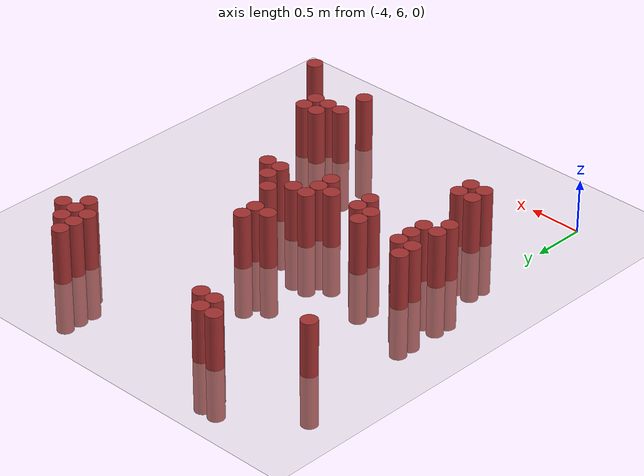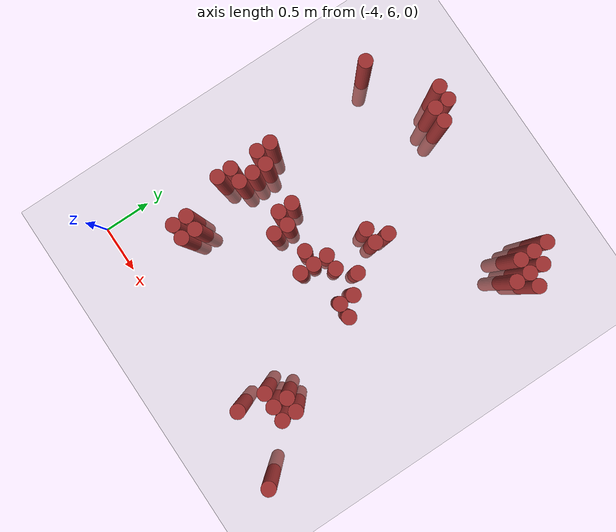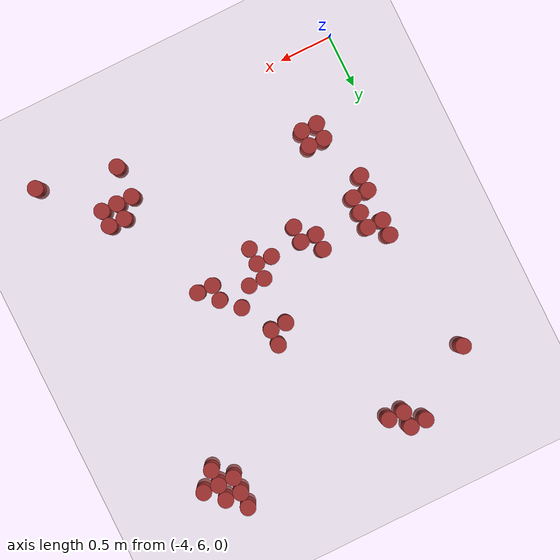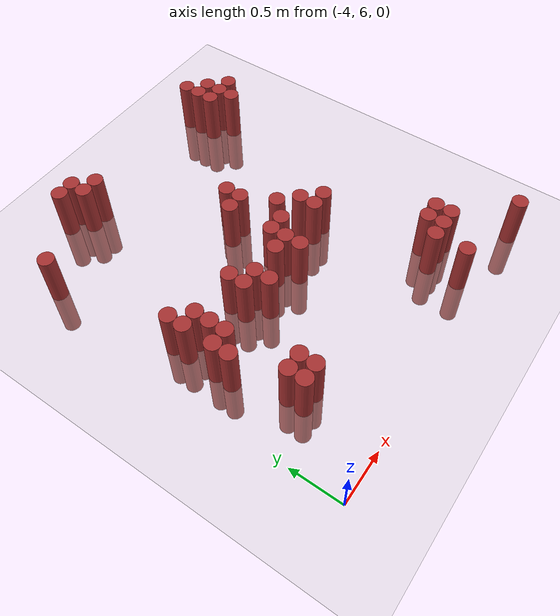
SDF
<sdf version="1.6">
 <world name="default">
  <model name="ground_plane">
   <static>1</static>
   <link name="link">
    <collision name="collision">
     <geometry><plane><normal>0 0 1</normal><size>100 100</size></plane></geometry>
     <surface><friction><ode><mu>100</mu><mu2>50</mu2></ode></friction></surface>
    </collision>
    <visual name="visual">
     <cast_shadows>0</cast_shadows>
     <geometry><plane><normal>0 0 1</normal><size>100 100</size></plane></geometry>
     <material>
      <script><uri>file://media/materials/scripts/gazebo.material</uri><name>Gazebo/Grey</name></script>
     </material>
    </visual>
   </link>
  </model>
  <model name="unit_cylinder_161">
   <static>1</static>
   <pose>-3.825000 9.075000 0.000000 0.000000 0.000000 0.000000</pose>
   <link name="link">
    <inertial>
     <mass>1</mass>
     <inertia><ixx>0.145833</ixx><ixy>0</ixy><ixz>0</ixz><iyy>0.145833</iyy><iyz>0</iyz><izz>0.125</izz></inertia>
    </inertial>
    <collision name="collision">
     <geometry><cylinder><radius>0.075000</radius><length>1</length></cylinder></geometry>
    </collision>
    <visual name="visual">
     <geometry><cylinder><radius>0.075000</radius><length>1</length></cylinder></geometry>
     <material>
      <ambient>0.648000 0.192000 0.192000 1</ambient>
      <diffuse>0.648000 0.192000 0.192000 1</diffuse>
     </material>
     <material>
      <script><name>Gazebo/Grey</name><uri>file://media/materials/scripts/gazebo.material</uri></script>
     </material>
    </visual>
   </link>
  </model>
  <model name="unit_cylinder_162">
   <static>1</static>
   <pose>-3.675000 7.275000 0.000000 0.000000 0.000000 0.000000</pose>
   <link name="link">
    <inertial>
     <mass>1</mass>
     <inertia><ixx>0.145833</ixx><ixy>0</ixy><ixz>0</ixz><iyy>0.145833</iyy><iyz>0</iyz><izz>0.125</izz></inertia>
    </inertial>
    <collision name="collision">
     <geometry><cylinder><radius>0.075000</radius><length>1</length></cylinder></geometry>
    </collision>
    <visual name="visual">
     <geometry><cylinder><radius>0.075000</radius><length>1</length></cylinder></geometry>
     <material>
      <ambient>0.648000 0.192000 0.192000 1</ambient>
      <diffuse>0.648000 0.192000 0.192000 1</diffuse>
     </material>
     <material>
      <script><name>Gazebo/Grey</name><uri>file://media/materials/scripts/gazebo.material</uri></script>
     </material>
    </visual>
   </link>
  </model>
  <model name="unit_cylinder_163">
   <static>1</static>
   <pose>-3.675000 7.425000 0.000000 0.000000 0.000000 0.000000</pose>
   <link name="link">
    <inertial>
     <mass>1</mass>
     <inertia><ixx>0.145833</ixx><ixy>0</ixy><ixz>0</ixz><iyy>0.145833</iyy><iyz>0</iyz><izz>0.125</izz></inertia>
    </inertial>
    <collision name="collision">
     <geometry><cylinder><radius>0.075000</radius><length>1</length></cylinder></geometry>
    </collision>
    <visual name="visual">
     <geometry><cylinder><radius>0.075000</radius><length>1</length></cylinder></geometry>
     <material>
      <ambient>0.648000 0.192000 0.192000 1</ambient>
      <diffuse>0.648000 0.192000 0.192000 1</diffuse>
     </material>
     <material>
      <script><name>Gazebo/Grey</name><uri>file://media/materials/scripts/gazebo.material</uri></script>
     </material>
    </visual>
   </link>
  </model>
  <model name="unit_cylinder_164">
   <static>1</static>
   <pose>-3.675000 7.725000 0.000000 0.000000 0.000000 0.000000</pose>
   <link name="link">
    <inertial>
     <mass>1</mass>
     <inertia><ixx>0.145833</ixx><ixy>0</ixy><ixz>0</ixz><iyy>0.145833</iyy><iyz>0</iyz><izz>0.125</izz></inertia>
    </inertial>
    <collision name="collision">
     <geometry><cylinder><radius>0.075000</radius><length>1</length></cylinder></geometry>
    </collision>
    <visual name="visual">
     <geometry><cylinder><radius>0.075000</radius><length>1</length></cylinder></geometry>
     <material>
      <ambient>0.648000 0.192000 0.192000 1</ambient>
      <diffuse>0.648000 0.192000 0.192000 1</diffuse>
     </material>
     <material>
      <script><name>Gazebo/Grey</name><uri>file://media/materials/scripts/gazebo.material</uri></script>
     </material>
    </visual>
   </link>
  </model>
  <model name="unit_cylinder_165">
   <static>1</static>
   <pose>-3.675000 7.875000 0.000000 0.000000 0.000000 0.000000</pose>
   <link name="link">
    <inertial>
     <mass>1</mass>
     <inertia><ixx>0.145833</ixx><ixy>0</ixy><ixz>0</ixz><iyy>0.145833</iyy><iyz>0</iyz><izz>0.125</izz></inertia>
    </inertial>
    <collision name="collision">
     <geometry><cylinder><radius>0.075000</radius><length>1</length></cylinder></geometry>
    </collision>
    <visual name="visual">
     <geometry><cylinder><radius>0.075000</radius><length>1</length></cylinder></geometry>
     <material>
      <ambient>0.648000 0.192000 0.192000 1</ambient>
      <diffuse>0.648000 0.192000 0.192000 1</diffuse>
     </material>
     <material>
      <script><name>Gazebo/Grey</name><uri>file://media/materials/scripts/gazebo.material</uri></script>
     </material>
    </visual>
   </link>
  </model>
  <model name="unit_cylinder_166">
   <static>1</static>
   <pose>-3.525000 6.675000 0.000000 0.000000 0.000000 0.000000</pose>
   <link name="link">
    <inertial>
     <mass>1</mass>
     <inertia><ixx>0.145833</ixx><ixy>0</ixy><ixz>0</ixz><iyy>0.145833</iyy><iyz>0</iyz><izz>0.125</izz></inertia>
    </inertial>
    <collision name="collision">
     <geometry><cylinder><radius>0.075000</radius><length>1</length></cylinder></geometry>
    </collision>
    <visual name="visual">
     <geometry><cylinder><radius>0.075000</radius><length>1</length></cylinder></geometry>
     <material>
      <ambient>0.648000 0.192000 0.192000 1</ambient>
      <diffuse>0.648000 0.192000 0.192000 1</diffuse>
     </material>
     <material>
      <script><name>Gazebo/Grey</name><uri>file://media/materials/scripts/gazebo.material</uri></script>
     </material>
    </visual>
   </link>
  </model>
  <model name="unit_cylinder_167">
   <static>1</static>
   <pose>-3.525000 6.825000 0.000000 0.000000 0.000000 0.000000</pose>
   <link name="link">
    <inertial>
     <mass>1</mass>
     <inertia><ixx>0.145833</ixx><ixy>0</ixy><ixz>0</ixz><iyy>0.145833</iyy><iyz>0</iyz><izz>0.125</izz></inertia>
    </inertial>
    <collision name="collision">
     <geometry><cylinder><radius>0.075000</radius><length>1</length></cylinder></geometry>
    </collision>
    <visual name="visual">
     <geometry><cylinder><radius>0.075000</radius><length>1</length></cylinder></geometry>
     <material>
      <ambient>0.648000 0.192000 0.192000 1</ambient>
      <diffuse>0.648000 0.192000 0.192000 1</diffuse>
     </material>
     <material>
      <script><name>Gazebo/Grey</name><uri>file://media/materials/scripts/gazebo.material</uri></script>
     </material>
    </visual>
   </link>
  </model>
  <model name="unit_cylinder_168">
   <static>1</static>
   <pose>-3.525000 7.425000 0.000000 0.000000 0.000000 0.000000</pose>
   <link name="link">
    <inertial>
     <mass>1</mass>
     <inertia><ixx>0.145833</ixx><ixy>0</ixy><ixz>0</ixz><iyy>0.145833</iyy><iyz>0</iyz><izz>0.125</izz></inertia>
    </inertial>
    <collision name="collision">
     <geometry><cylinder><radius>0.075000</radius><length>1</length></cylinder></geometry>
    </collision>
    <visual name="visual">
     <geometry><cylinder><radius>0.075000</radius><length>1</length></cylinder></geometry>
     <material>
      <ambient>0.648000 0.192000 0.192000 1</ambient>
      <diffuse>0.648000 0.192000 0.192000 1</diffuse>
     </material>
     <material>
      <script><name>Gazebo/Grey</name><uri>file://media/materials/scripts/gazebo.material</uri></script>
     </material>
    </visual>
   </link>
  </model>
  <model name="unit_cylinder_169">
   <static>1</static>
   <pose>-3.525000 7.575000 0.000000 0.000000 0.000000 0.000000</pose>
   <link name="link">
    <inertial>
     <mass>1</mass>
     <inertia><ixx>0.145833</ixx><ixy>0</ixy><ixz>0</ixz><iyy>0.145833</iyy><iyz>0</iyz><izz>0.125</izz></inertia>
    </inertial>
    <collision name="collision">
     <geometry><cylinder><radius>0.075000</radius><length>1</length></cylinder></geometry>
    </collision>
    <visual name="visual">
     <geometry><cylinder><radius>0.075000</radius><length>1</length></cylinder></geometry>
     <material>
      <ambient>0.648000 0.192000 0.192000 1</ambient>
      <diffuse>0.648000 0.192000 0.192000 1</diffuse>
     </material>
     <material>
      <script><name>Gazebo/Grey</name><uri>file://media/materials/scripts/gazebo.material</uri></script>
     </material>
    </visual>
   </link>
  </model>
  <model name="unit_cylinder_170">
   <static>1</static>
   <pose>-3.525000 7.725000 0.000000 0.000000 0.000000 0.000000</pose>
   <link name="link">
    <inertial>
     <mass>1</mass>
     <inertia><ixx>0.145833</ixx><ixy>0</ixy><ixz>0</ixz><iyy>0.145833</iyy><iyz>0</iyz><izz>0.125</izz></inertia>
    </inertial>
    <collision name="collision">
     <geometry><cylinder><radius>0.075000</radius><length>1</length></cylinder></geometry>
    </collision>
    <visual name="visual">
     <geometry><cylinder><radius>0.075000</radius><length>1</length></cylinder></geometry>
     <material>
      <ambient>0.648000 0.192000 0.192000 1</ambient>
      <diffuse>0.648000 0.192000 0.192000 1</diffuse>
     </material>
     <material>
      <script><name>Gazebo/Grey</name><uri>file://media/materials/scripts/gazebo.material</uri></script>
     </material>
    </visual>
   </link>
  </model>
  <model name="unit_cylinder_171">
   <static>1</static>
   <pose>-3.375000 6.675000 0.000000 0.000000 0.000000 0.000000</pose>
   <link name="link">
    <inertial>
     <mass>1</mass>
     <inertia><ixx>0.145833</ixx><ixy>0</ixy><ixz>0</ixz><iyy>0.145833</iyy><iyz>0</iyz><izz>0.125</izz></inertia>
    </inertial>
    <collision name="collision">
     <geometry><cylinder><radius>0.075000</radius><length>1</length></cylinder></geometry>
    </collision>
    <visual name="visual">
     <geometry><cylinder><radius>0.075000</radius><length>1</length></cylinder></geometry>
     <material>
      <ambient>0.648000 0.192000 0.192000 1</ambient>
      <diffuse>0.648000 0.192000 0.192000 1</diffuse>
     </material>
     <material>
      <script><name>Gazebo/Grey</name><uri>file://media/materials/scripts/gazebo.material</uri></script>
     </material>
    </visual>
   </link>
  </model>
  <model name="unit_cylinder_172">
   <static>1</static>
   <pose>-3.375000 6.825000 0.000000 0.000000 0.000000 0.000000</pose>
   <link name="link">
    <inertial>
     <mass>1</mass>
     <inertia><ixx>0.145833</ixx><ixy>0</ixy><ixz>0</ixz><iyy>0.145833</iyy><iyz>0</iyz><izz>0.125</izz></inertia>
    </inertial>
    <collision name="collision">
     <geometry><cylinder><radius>0.075000</radius><length>1</length></cylinder></geometry>
    </collision>
    <visual name="visual">
     <geometry><cylinder><radius>0.075000</radius><length>1</length></cylinder></geometry>
     <material>
      <ambient>0.648000 0.192000 0.192000 1</ambient>
      <diffuse>0.648000 0.192000 0.192000 1</diffuse>
     </material>
     <material>
      <script><name>Gazebo/Grey</name><uri>file://media/materials/scripts/gazebo.material</uri></script>
     </material>
    </visual>
   </link>
  </model>
  <model name="unit_cylinder_173">
   <static>1</static>
   <pose>-3.225000 9.525000 0.000000 0.000000 0.000000 0.000000</pose>
   <link name="link">
    <inertial>
     <mass>1</mass>
     <inertia><ixx>0.145833</ixx><ixy>0</ixy><ixz>0</ixz><iyy>0.145833</iyy><iyz>0</iyz><izz>0.125</izz></inertia>
    </inertial>
    <collision name="collision">
     <geometry><cylinder><radius>0.075000</radius><length>1</length></cylinder></geometry>
    </collision>
    <visual name="visual">
     <geometry><cylinder><radius>0.075000</radius><length>1</length></cylinder></geometry>
     <material>
      <ambient>0.648000 0.192000 0.192000 1</ambient>
      <diffuse>0.648000 0.192000 0.192000 1</diffuse>
     </material>
     <material>
      <script><name>Gazebo/Grey</name><uri>file://media/materials/scripts/gazebo.material</uri></script>
     </material>
    </visual>
   </link>
  </model>
  <model name="unit_cylinder_174">
   <static>1</static>
   <pose>-3.075000 7.575000 0.000000 0.000000 0.000000 0.000000</pose>
   <link name="link">
    <inertial>
     <mass>1</mass>
     <inertia><ixx>0.145833</ixx><ixy>0</ixy><ixz>0</ixz><iyy>0.145833</iyy><iyz>0</iyz><izz>0.125</izz></inertia>
    </inertial>
    <collision name="collision">
     <geometry><cylinder><radius>0.075000</radius><length>1</length></cylinder></geometry>
    </collision>
    <visual name="visual">
     <geometry><cylinder><radius>0.075000</radius><length>1</length></cylinder></geometry>
     <material>
      <ambient>0.648000 0.192000 0.192000 1</ambient>
      <diffuse>0.648000 0.192000 0.192000 1</diffuse>
     </material>
     <material>
      <script><name>Gazebo/Grey</name><uri>file://media/materials/scripts/gazebo.material</uri></script>
     </material>
    </visual>
   </link>
  </model>
  <model name="unit_cylinder_175">
   <static>1</static>
   <pose>-3.075000 7.725000 0.000000 0.000000 0.000000 0.000000</pose>
   <link name="link">
    <inertial>
     <mass>1</mass>
     <inertia><ixx>0.145833</ixx><ixy>0</ixy><ixz>0</ixz><iyy>0.145833</iyy><iyz>0</iyz><izz>0.125</izz></inertia>
    </inertial>
    <collision name="collision">
     <geometry><cylinder><radius>0.075000</radius><length>1</length></cylinder></geometry>
    </collision>
    <visual name="visual">
     <geometry><cylinder><radius>0.075000</radius><length>1</length></cylinder></geometry>
     <material>
      <ambient>0.648000 0.192000 0.192000 1</ambient>
      <diffuse>0.648000 0.192000 0.192000 1</diffuse>
     </material>
     <material>
      <script><name>Gazebo/Grey</name><uri>file://media/materials/scripts/gazebo.material</uri></script>
     </material>
    </visual>
   </link>
  </model>
  <model name="unit_cylinder_176">
   <static>1</static>
   <pose>-3.075000 9.375000 0.000000 0.000000 0.000000 0.000000</pose>
   <link name="link">
    <inertial>
     <mass>1</mass>
     <inertia><ixx>0.145833</ixx><ixy>0</ixy><ixz>0</ixz><iyy>0.145833</iyy><iyz>0</iyz><izz>0.125</izz></inertia>
    </inertial>
    <collision name="collision">
     <geometry><cylinder><radius>0.075000</radius><length>1</length></cylinder></geometry>
    </collision>
    <visual name="visual">
     <geometry><cylinder><radius>0.075000</radius><length>1</length></cylinder></geometry>
     <material>
      <ambient>0.648000 0.192000 0.192000 1</ambient>
      <diffuse>0.648000 0.192000 0.192000 1</diffuse>
     </material>
     <material>
      <script><name>Gazebo/Grey</name><uri>file://media/materials/scripts/gazebo.material</uri></script>
     </material>
    </visual>
   </link>
  </model>
  <model name="unit_cylinder_177">
   <static>1</static>
   <pose>-3.075000 9.525000 0.000000 0.000000 0.000000 0.000000</pose>
   <link name="link">
    <inertial>
     <mass>1</mass>
     <inertia><ixx>0.145833</ixx><ixy>0</ixy><ixz>0</ixz><iyy>0.145833</iyy><iyz>0</iyz><izz>0.125</izz></inertia>
    </inertial>
    <collision name="collision">
     <geometry><cylinder><radius>0.075000</radius><length>1</length></cylinder></geometry>
    </collision>
    <visual name="visual">
     <geometry><cylinder><radius>0.075000</radius><length>1</length></cylinder></geometry>
     <material>
      <ambient>0.648000 0.192000 0.192000 1</ambient>
      <diffuse>0.648000 0.192000 0.192000 1</diffuse>
     </material>
     <material>
      <script><name>Gazebo/Grey</name><uri>file://media/materials/scripts/gazebo.material</uri></script>
     </material>
    </visual>
   </link>
  </model>
  <model name="unit_cylinder_178">
   <static>1</static>
   <pose>-2.925000 7.425000 0.000000 0.000000 0.000000 0.000000</pose>
   <link name="link">
    <inertial>
     <mass>1</mass>
     <inertia><ixx>0.145833</ixx><ixy>0</ixy><ixz>0</ixz><iyy>0.145833</iyy><iyz>0</iyz><izz>0.125</izz></inertia>
    </inertial>
    <collision name="collision">
     <geometry><cylinder><radius>0.075000</radius><length>1</length></cylinder></geometry>
    </collision>
    <visual name="visual">
     <geometry><cylinder><radius>0.075000</radius><length>1</length></cylinder></geometry>
     <material>
      <ambient>0.648000 0.192000 0.192000 1</ambient>
      <diffuse>0.648000 0.192000 0.192000 1</diffuse>
     </material>
     <material>
      <script><name>Gazebo/Grey</name><uri>file://media/materials/scripts/gazebo.material</uri></script>
     </material>
    </visual>
   </link>
  </model>
  <model name="unit_cylinder_179">
   <static>1</static>
   <pose>-2.925000 7.575000 0.000000 0.000000 0.000000 0.000000</pose>
   <link name="link">
    <inertial>
     <mass>1</mass>
     <inertia><ixx>0.145833</ixx><ixy>0</ixy><ixz>0</ixz><iyy>0.145833</iyy><iyz>0</iyz><izz>0.125</izz></inertia>
    </inertial>
    <collision name="collision">
     <geometry><cylinder><radius>0.075000</radius><length>1</length></cylinder></geometry>
    </collision>
    <visual name="visual">
     <geometry><cylinder><radius>0.075000</radius><length>1</length></cylinder></geometry>
     <material>
      <ambient>0.648000 0.192000 0.192000 1</ambient>
      <diffuse>0.648000 0.192000 0.192000 1</diffuse>
     </material>
     <material>
      <script><name>Gazebo/Grey</name><uri>file://media/materials/scripts/gazebo.material</uri></script>
     </material>
    </visual>
   </link>
  </model>
  <model name="unit_cylinder_180">
   <static>1</static>
   <pose>-2.925000 9.375000 0.000000 0.000000 0.000000 0.000000</pose>
   <link name="link">
    <inertial>
     <mass>1</mass>
     <inertia><ixx>0.145833</ixx><ixy>0</ixy><ixz>0</ixz><iyy>0.145833</iyy><iyz>0</iyz><izz>0.125</izz></inertia>
    </inertial>
    <collision name="collision">
     <geometry><cylinder><radius>0.075000</radius><length>1</length></cylinder></geometry>
    </collision>
    <visual name="visual">
     <geometry><cylinder><radius>0.075000</radius><length>1</length></cylinder></geometry>
     <material>
      <ambient>0.648000 0.192000 0.192000 1</ambient>
      <diffuse>0.648000 0.192000 0.192000 1</diffuse>
     </material>
     <material>
      <script><name>Gazebo/Grey</name><uri>file://media/materials/scripts/gazebo.material</uri></script>
     </material>
    </visual>
   </link>
  </model>
  <model name="unit_cylinder_184">
   <static>1</static>
   <pose>-2.625000 7.575000 0.000000 0.000000 0.000000 0.000000</pose>
   <link name="link">
    <inertial>
     <mass>1</mass>
     <inertia><ixx>0.145833</ixx><ixy>0</ixy><ixz>0</ixz><iyy>0.145833</iyy><iyz>0</iyz><izz>0.125</izz></inertia>
    </inertial>
    <collision name="collision">
     <geometry><cylinder><radius>0.075000</radius><length>1</length></cylinder></geometry>
    </collision>
    <visual name="visual">
     <geometry><cylinder><radius>0.075000</radius><length>1</length></cylinder></geometry>
     <material>
      <ambient>0.648000 0.192000 0.192000 1</ambient>
      <diffuse>0.648000 0.192000 0.192000 1</diffuse>
     </material>
     <material>
      <script><name>Gazebo/Grey</name><uri>file://media/materials/scripts/gazebo.material</uri></script>
     </material>
    </visual>
   </link>
  </model>
  <model name="unit_cylinder_186">
   <static>1</static>
   <pose>-2.475000 7.425000 0.000000 0.000000 0.000000 0.000000</pose>
   <link name="link">
    <inertial>
     <mass>1</mass>
     <inertia><ixx>0.145833</ixx><ixy>0</ixy><ixz>0</ixz><iyy>0.145833</iyy><iyz>0</iyz><izz>0.125</izz></inertia>
    </inertial>
    <collision name="collision">
     <geometry><cylinder><radius>0.075000</radius><length>1</length></cylinder></geometry>
    </collision>
    <visual name="visual">
     <geometry><cylinder><radius>0.075000</radius><length>1</length></cylinder></geometry>
     <material>
      <ambient>0.648000 0.192000 0.192000 1</ambient>
      <diffuse>0.648000 0.192000 0.192000 1</diffuse>
     </material>
     <material>
      <script><name>Gazebo/Grey</name><uri>file://media/materials/scripts/gazebo.material</uri></script>
     </material>
    </visual>
   </link>
  </model>
  <model name="unit_cylinder_187">
   <static>1</static>
   <pose>-2.475000 7.575000 0.000000 0.000000 0.000000 0.000000</pose>
   <link name="link">
    <inertial>
     <mass>1</mass>
     <inertia><ixx>0.145833</ixx><ixy>0</ixy><ixz>0</ixz><iyy>0.145833</iyy><iyz>0</iyz><izz>0.125</izz></inertia>
    </inertial>
    <collision name="collision">
     <geometry><cylinder><radius>0.075000</radius><length>1</length></cylinder></geometry>
    </collision>
    <visual name="visual">
     <geometry><cylinder><radius>0.075000</radius><length>1</length></cylinder></geometry>
     <material>
      <ambient>0.648000 0.192000 0.192000 1</ambient>
      <diffuse>0.648000 0.192000 0.192000 1</diffuse>
     </material>
     <material>
      <script><name>Gazebo/Grey</name><uri>file://media/materials/scripts/gazebo.material</uri></script>
     </material>
    </visual>
   </link>
  </model>
  <model name="unit_cylinder_188">
   <static>1</static>
   <pose>-2.475000 7.725000 0.000000 0.000000 0.000000 0.000000</pose>
   <link name="link">
    <inertial>
     <mass>1</mass>
     <inertia><ixx>0.145833</ixx><ixy>0</ixy><ixz>0</ixz><iyy>0.145833</iyy><iyz>0</iyz><izz>0.125</izz></inertia>
    </inertial>
    <collision name="collision">
     <geometry><cylinder><radius>0.075000</radius><length>1</length></cylinder></geometry>
    </collision>
    <visual name="visual">
     <geometry><cylinder><radius>0.075000</radius><length>1</length></cylinder></geometry>
     <material>
      <ambient>0.648000 0.192000 0.192000 1</ambient>
      <diffuse>0.648000 0.192000 0.192000 1</diffuse>
     </material>
     <material>
      <script><name>Gazebo/Grey</name><uri>file://media/materials/scripts/gazebo.material</uri></script>
     </material>
    </visual>
   </link>
  </model>
  <model name="unit_cylinder_189">
   <static>1</static>
   <pose>-2.475000 8.175000 0.000000 0.000000 0.000000 0.000000</pose>
   <link name="link">
    <inertial>
     <mass>1</mass>
     <inertia><ixx>0.145833</ixx><ixy>0</ixy><ixz>0</ixz><iyy>0.145833</iyy><iyz>0</iyz><izz>0.125</izz></inertia>
    </inertial>
    <collision name="collision">
     <geometry><cylinder><radius>0.075000</radius><length>1</length></cylinder></geometry>
    </collision>
    <visual name="visual">
     <geometry><cylinder><radius>0.075000</radius><length>1</length></cylinder></geometry>
     <material>
      <ambient>0.648000 0.192000 0.192000 1</ambient>
      <diffuse>0.648000 0.192000 0.192000 1</diffuse>
     </material>
     <material>
      <script><name>Gazebo/Grey</name><uri>file://media/materials/scripts/gazebo.material</uri></script>
     </material>
    </visual>
   </link>
  </model>
  <model name="unit_cylinder_190">
   <static>1</static>
   <pose>-2.325000 7.725000 0.000000 0.000000 0.000000 0.000000</pose>
   <link name="link">
    <inertial>
     <mass>1</mass>
     <inertia><ixx>0.145833</ixx><ixy>0</ixy><ixz>0</ixz><iyy>0.145833</iyy><iyz>0</iyz><izz>0.125</izz></inertia>
    </inertial>
    <collision name="collision">
     <geometry><cylinder><radius>0.075000</radius><length>1</length></cylinder></geometry>
    </collision>
    <visual name="visual">
     <geometry><cylinder><radius>0.075000</radius><length>1</length></cylinder></geometry>
     <material>
      <ambient>0.648000 0.192000 0.192000 1</ambient>
      <diffuse>0.648000 0.192000 0.192000 1</diffuse>
     </material>
     <material>
      <script><name>Gazebo/Grey</name><uri>file://media/materials/scripts/gazebo.material</uri></script>
     </material>
    </visual>
   </link>
  </model>
  <model name="unit_cylinder_191">
   <static>1</static>
   <pose>-2.325000 8.175000 0.000000 0.000000 0.000000 0.000000</pose>
   <link name="link">
    <inertial>
     <mass>1</mass>
     <inertia><ixx>0.145833</ixx><ixy>0</ixy><ixz>0</ixz><iyy>0.145833</iyy><iyz>0</iyz><izz>0.125</izz></inertia>
    </inertial>
    <collision name="collision">
     <geometry><cylinder><radius>0.075000</radius><length>1</length></cylinder></geometry>
    </collision>
    <visual name="visual">
     <geometry><cylinder><radius>0.075000</radius><length>1</length></cylinder></geometry>
     <material>
      <ambient>0.648000 0.192000 0.192000 1</ambient>
      <diffuse>0.648000 0.192000 0.192000 1</diffuse>
     </material>
     <material>
      <script><name>Gazebo/Grey</name><uri>file://media/materials/scripts/gazebo.material</uri></script>
     </material>
    </visual>
   </link>
  </model>
  <model name="unit_cylinder_192">
   <static>1</static>
   <pose>-2.325000 8.325000 0.000000 0.000000 0.000000 0.000000</pose>
   <link name="link">
    <inertial>
     <mass>1</mass>
     <inertia><ixx>0.145833</ixx><ixy>0</ixy><ixz>0</ixz><iyy>0.145833</iyy><iyz>0</iyz><izz>0.125</izz></inertia>
    </inertial>
    <collision name="collision">
     <geometry><cylinder><radius>0.075000</radius><length>1</length></cylinder></geometry>
    </collision>
    <visual name="visual">
     <geometry><cylinder><radius>0.075000</radius><length>1</length></cylinder></geometry>
     <material>
      <ambient>0.648000 0.192000 0.192000 1</ambient>
      <diffuse>0.648000 0.192000 0.192000 1</diffuse>
     </material>
     <material>
      <script><name>Gazebo/Grey</name><uri>file://media/materials/scripts/gazebo.material</uri></script>
     </material>
    </visual>
   </link>
  </model>
  <model name="unit_cylinder_193">
   <static>1</static>
   <pose>-2.175000 7.875000 0.000000 0.000000 0.000000 0.000000</pose>
   <link name="link">
    <inertial>
     <mass>1</mass>
     <inertia><ixx>0.145833</ixx><ixy>0</ixy><ixz>0</ixz><iyy>0.145833</iyy><iyz>0</iyz><izz>0.125</izz></inertia>
    </inertial>
    <collision name="collision">
     <geometry><cylinder><radius>0.075000</radius><length>1</length></cylinder></geometry>
    </collision>
    <visual name="visual">
     <geometry><cylinder><radius>0.075000</radius><length>1</length></cylinder></geometry>
     <material>
      <ambient>0.648000 0.192000 0.192000 1</ambient>
      <diffuse>0.648000 0.192000 0.192000 1</diffuse>
     </material>
     <material>
      <script><name>Gazebo/Grey</name><uri>file://media/materials/scripts/gazebo.material</uri></script>
     </material>
    </visual>
   </link>
  </model>
  <model name="unit_cylinder_199">
   <static>1</static>
   <pose>-2.025000 7.575000 0.000000 0.000000 0.000000 0.000000</pose>
   <link name="link">
    <inertial>
     <mass>1</mass>
     <inertia><ixx>0.145833</ixx><ixy>0</ixy><ixz>0</ixz><iyy>0.145833</iyy><iyz>0</iyz><izz>0.125</izz></inertia>
    </inertial>
    <collision name="collision">
     <geometry><cylinder><radius>0.075000</radius><length>1</length></cylinder></geometry>
    </collision>
    <visual name="visual">
     <geometry><cylinder><radius>0.075000</radius><length>1</length></cylinder></geometry>
     <material>
      <ambient>0.648000 0.192000 0.192000 1</ambient>
      <diffuse>0.648000 0.192000 0.192000 1</diffuse>
     </material>
     <material>
      <script><name>Gazebo/Grey</name><uri>file://media/materials/scripts/gazebo.material</uri></script>
     </material>
    </visual>
   </link>
  </model>
  <model name="unit_cylinder_200">
   <static>1</static>
   <pose>-2.025000 7.725000 0.000000 0.000000 0.000000 0.000000</pose>
   <link name="link">
    <inertial>
     <mass>1</mass>
     <inertia><ixx>0.145833</ixx><ixy>0</ixy><ixz>0</ixz><iyy>0.145833</iyy><iyz>0</iyz><izz>0.125</izz></inertia>
    </inertial>
    <collision name="collision">
     <geometry><cylinder><radius>0.075000</radius><length>1</length></cylinder></geometry>
    </collision>
    <visual name="visual">
     <geometry><cylinder><radius>0.075000</radius><length>1</length></cylinder></geometry>
     <material>
      <ambient>0.648000 0.192000 0.192000 1</ambient>
      <diffuse>0.648000 0.192000 0.192000 1</diffuse>
     </material>
     <material>
      <script><name>Gazebo/Grey</name><uri>file://media/materials/scripts/gazebo.material</uri></script>
     </material>
    </visual>
   </link>
  </model>
  <model name="unit_cylinder_206">
   <static>1</static>
   <pose>-1.875000 7.575000 0.000000 0.000000 0.000000 0.000000</pose>
   <link name="link">
    <inertial>
     <mass>1</mass>
     <inertia><ixx>0.145833</ixx><ixy>0</ixy><ixz>0</ixz><iyy>0.145833</iyy><iyz>0</iyz><izz>0.125</izz></inertia>
    </inertial>
    <collision name="collision">
     <geometry><cylinder><radius>0.075000</radius><length>1</length></cylinder></geometry>
    </collision>
    <visual name="visual">
     <geometry><cylinder><radius>0.075000</radius><length>1</length></cylinder></geometry>
     <material>
      <ambient>0.648000 0.192000 0.192000 1</ambient>
      <diffuse>0.648000 0.192000 0.192000 1</diffuse>
     </material>
     <material>
      <script><name>Gazebo/Grey</name><uri>file://media/materials/scripts/gazebo.material</uri></script>
     </material>
    </visual>
   </link>
  </model>
  <model name="unit_cylinder_209">
   <static>1</static>
   <pose>-1.725000 6.225000 0.000000 0.000000 0.000000 0.000000</pose>
   <link name="link">
    <inertial>
     <mass>1</mass>
     <inertia><ixx>0.145833</ixx><ixy>0</ixy><ixz>0</ixz><iyy>0.145833</iyy><iyz>0</iyz><izz>0.125</izz></inertia>
    </inertial>
    <collision name="collision">
     <geometry><cylinder><radius>0.075000</radius><length>1</length></cylinder></geometry>
    </collision>
    <visual name="visual">
     <geometry><cylinder><radius>0.075000</radius><length>1</length></cylinder></geometry>
     <material>
      <ambient>0.648000 0.192000 0.192000 1</ambient>
      <diffuse>0.648000 0.192000 0.192000 1</diffuse>
     </material>
     <material>
      <script><name>Gazebo/Grey</name><uri>file://media/materials/scripts/gazebo.material</uri></script>
     </material>
    </visual>
   </link>
  </model>
  <model name="unit_cylinder_210">
   <static>1</static>
   <pose>-1.725000 6.525000 0.000000 0.000000 0.000000 0.000000</pose>
   <link name="link">
    <inertial>
     <mass>1</mass>
     <inertia><ixx>0.145833</ixx><ixy>0</ixy><ixz>0</ixz><iyy>0.145833</iyy><iyz>0</iyz><izz>0.125</izz></inertia>
    </inertial>
    <collision name="collision">
     <geometry><cylinder><radius>0.075000</radius><length>1</length></cylinder></geometry>
    </collision>
    <visual name="visual">
     <geometry><cylinder><radius>0.075000</radius><length>1</length></cylinder></geometry>
     <material>
      <ambient>0.648000 0.192000 0.192000 1</ambient>
      <diffuse>0.648000 0.192000 0.192000 1</diffuse>
     </material>
     <material>
      <script><name>Gazebo/Grey</name><uri>file://media/materials/scripts/gazebo.material</uri></script>
     </material>
    </visual>
   </link>
  </model>
  <model name="unit_cylinder_211">
   <static>1</static>
   <pose>-1.575000 6.525000 0.000000 0.000000 0.000000 0.000000</pose>
   <link name="link">
    <inertial>
     <mass>1</mass>
     <inertia><ixx>0.145833</ixx><ixy>0</ixy><ixz>0</ixz><iyy>0.145833</iyy><iyz>0</iyz><izz>0.125</izz></inertia>
    </inertial>
    <collision name="collision">
     <geometry><cylinder><radius>0.075000</radius><length>1</length></cylinder></geometry>
    </collision>
    <visual name="visual">
     <geometry><cylinder><radius>0.075000</radius><length>1</length></cylinder></geometry>
     <material>
      <ambient>0.648000 0.192000 0.192000 1</ambient>
      <diffuse>0.648000 0.192000 0.192000 1</diffuse>
     </material>
     <material>
      <script><name>Gazebo/Grey</name><uri>file://media/materials/scripts/gazebo.material</uri></script>
     </material>
    </visual>
   </link>
  </model>
  <model name="unit_cylinder_212">
   <static>1</static>
   <pose>-1.575000 6.675000 0.000000 0.000000 0.000000 0.000000</pose>
   <link name="link">
    <inertial>
     <mass>1</mass>
     <inertia><ixx>0.145833</ixx><ixy>0</ixy><ixz>0</ixz><iyy>0.145833</iyy><iyz>0</iyz><izz>0.125</izz></inertia>
    </inertial>
    <collision name="collision">
     <geometry><cylinder><radius>0.075000</radius><length>1</length></cylinder></geometry>
    </collision>
    <visual name="visual">
     <geometry><cylinder><radius>0.075000</radius><length>1</length></cylinder></geometry>
     <material>
      <ambient>0.648000 0.192000 0.192000 1</ambient>
      <diffuse>0.648000 0.192000 0.192000 1</diffuse>
     </material>
     <material>
      <script><name>Gazebo/Grey</name><uri>file://media/materials/scripts/gazebo.material</uri></script>
     </material>
    </visual>
   </link>
  </model>
  <model name="unit_cylinder_213">
   <static>1</static>
   <pose>-1.425000 6.525000 0.000000 0.000000 0.000000 0.000000</pose>
   <link name="link">
    <inertial>
     <mass>1</mass>
     <inertia><ixx>0.145833</ixx><ixy>0</ixy><ixz>0</ixz><iyy>0.145833</iyy><iyz>0</iyz><izz>0.125</izz></inertia>
    </inertial>
    <collision name="collision">
     <geometry><cylinder><radius>0.075000</radius><length>1</length></cylinder></geometry>
    </collision>
    <visual name="visual">
     <geometry><cylinder><radius>0.075000</radius><length>1</length></cylinder></geometry>
     <material>
      <ambient>0.648000 0.192000 0.192000 1</ambient>
      <diffuse>0.648000 0.192000 0.192000 1</diffuse>
     </material>
     <material>
      <script><name>Gazebo/Grey</name><uri>file://media/materials/scripts/gazebo.material</uri></script>
     </material>
    </visual>
   </link>
  </model>
  <model name="unit_cylinder_214">
   <static>1</static>
   <pose>-1.425000 6.675000 0.000000 0.000000 0.000000 0.000000</pose>
   <link name="link">
    <inertial>
     <mass>1</mass>
     <inertia><ixx>0.145833</ixx><ixy>0</ixy><ixz>0</ixz><iyy>0.145833</iyy><iyz>0</iyz><izz>0.125</izz></inertia>
    </inertial>
    <collision name="collision">
     <geometry><cylinder><radius>0.075000</radius><length>1</length></cylinder></geometry>
    </collision>
    <visual name="visual">
     <geometry><cylinder><radius>0.075000</radius><length>1</length></cylinder></geometry>
     <material>
      <ambient>0.648000 0.192000 0.192000 1</ambient>
      <diffuse>0.648000 0.192000 0.192000 1</diffuse>
     </material>
     <material>
      <script><name>Gazebo/Grey</name><uri>file://media/materials/scripts/gazebo.material</uri></script>
     </material>
    </visual>
   </link>
  </model>
  <model name="unit_cylinder_215">
   <static>1</static>
   <pose>-1.425000 9.225000 0.000000 0.000000 0.000000 0.000000</pose>
   <link name="link">
    <inertial>
     <mass>1</mass>
     <inertia><ixx>0.145833</ixx><ixy>0</ixy><ixz>0</ixz><iyy>0.145833</iyy><iyz>0</iyz><izz>0.125</izz></inertia>
    </inertial>
    <collision name="collision">
     <geometry><cylinder><radius>0.075000</radius><length>1</length></cylinder></geometry>
    </collision>
    <visual name="visual">
     <geometry><cylinder><radius>0.075000</radius><length>1</length></cylinder></geometry>
     <material>
      <ambient>0.648000 0.192000 0.192000 1</ambient>
      <diffuse>0.648000 0.192000 0.192000 1</diffuse>
     </material>
     <material>
      <script><name>Gazebo/Grey</name><uri>file://media/materials/scripts/gazebo.material</uri></script>
     </material>
    </visual>
   </link>
  </model>
  <model name="unit_cylinder_216">
   <static>1</static>
   <pose>-1.425000 9.375000 0.000000 0.000000 0.000000 0.000000</pose>
   <link name="link">
    <inertial>
     <mass>1</mass>
     <inertia><ixx>0.145833</ixx><ixy>0</ixy><ixz>0</ixz><iyy>0.145833</iyy><iyz>0</iyz><izz>0.125</izz></inertia>
    </inertial>
    <collision name="collision">
     <geometry><cylinder><radius>0.075000</radius><length>1</length></cylinder></geometry>
    </collision>
    <visual name="visual">
     <geometry><cylinder><radius>0.075000</radius><length>1</length></cylinder></geometry>
     <material>
      <ambient>0.648000 0.192000 0.192000 1</ambient>
      <diffuse>0.648000 0.192000 0.192000 1</diffuse>
     </material>
     <material>
      <script><name>Gazebo/Grey</name><uri>file://media/materials/scripts/gazebo.material</uri></script>
     </material>
    </visual>
   </link>
  </model>
  <model name="unit_cylinder_217">
   <static>1</static>
   <pose>-1.425000 9.525000 0.000000 0.000000 0.000000 0.000000</pose>
   <link name="link">
    <inertial>
     <mass>1</mass>
     <inertia><ixx>0.145833</ixx><ixy>0</ixy><ixz>0</ixz><iyy>0.145833</iyy><iyz>0</iyz><izz>0.125</izz></inertia>
    </inertial>
    <collision name="collision">
     <geometry><cylinder><radius>0.075000</radius><length>1</length></cylinder></geometry>
    </collision>
    <visual name="visual">
     <geometry><cylinder><radius>0.075000</radius><length>1</length></cylinder></geometry>
     <material>
      <ambient>0.648000 0.192000 0.192000 1</ambient>
      <diffuse>0.648000 0.192000 0.192000 1</diffuse>
     </material>
     <material>
      <script><name>Gazebo/Grey</name><uri>file://media/materials/scripts/gazebo.material</uri></script>
     </material>
    </visual>
   </link>
  </model>
  <model name="unit_cylinder_218">
   <static>1</static>
   <pose>-1.275000 9.075000 0.000000 0.000000 0.000000 0.000000</pose>
   <link name="link">
    <inertial>
     <mass>1</mass>
     <inertia><ixx>0.145833</ixx><ixy>0</ixy><ixz>0</ixz><iyy>0.145833</iyy><iyz>0</iyz><izz>0.125</izz></inertia>
    </inertial>
    <collision name="collision">
     <geometry><cylinder><radius>0.075000</radius><length>1</length></cylinder></geometry>
    </collision>
    <visual name="visual">
     <geometry><cylinder><radius>0.075000</radius><length>1</length></cylinder></geometry>
     <material>
      <ambient>0.648000 0.192000 0.192000 1</ambient>
      <diffuse>0.648000 0.192000 0.192000 1</diffuse>
     </material>
     <material>
      <script><name>Gazebo/Grey</name><uri>file://media/materials/scripts/gazebo.material</uri></script>
     </material>
    </visual>
   </link>
  </model>
  <model name="unit_cylinder_219">
   <static>1</static>
   <pose>-1.275000 9.225000 0.000000 0.000000 0.000000 0.000000</pose>
   <link name="link">
    <inertial>
     <mass>1</mass>
     <inertia><ixx>0.145833</ixx><ixy>0</ixy><ixz>0</ixz><iyy>0.145833</iyy><iyz>0</iyz><izz>0.125</izz></inertia>
    </inertial>
    <collision name="collision">
     <geometry><cylinder><radius>0.075000</radius><length>1</length></cylinder></geometry>
    </collision>
    <visual name="visual">
     <geometry><cylinder><radius>0.075000</radius><length>1</length></cylinder></geometry>
     <material>
      <ambient>0.648000 0.192000 0.192000 1</ambient>
      <diffuse>0.648000 0.192000 0.192000 1</diffuse>
     </material>
     <material>
      <script><name>Gazebo/Grey</name><uri>file://media/materials/scripts/gazebo.material</uri></script>
     </material>
    </visual>
   </link>
  </model>
  <model name="unit_cylinder_220">
   <static>1</static>
   <pose>-1.275000 9.375000 0.000000 0.000000 0.000000 0.000000</pose>
   <link name="link">
    <inertial>
     <mass>1</mass>
     <inertia><ixx>0.145833</ixx><ixy>0</ixy><ixz>0</ixz><iyy>0.145833</iyy><iyz>0</iyz><izz>0.125</izz></inertia>
    </inertial>
    <collision name="collision">
     <geometry><cylinder><radius>0.075000</radius><length>1</length></cylinder></geometry>
    </collision>
    <visual name="visual">
     <geometry><cylinder><radius>0.075000</radius><length>1</length></cylinder></geometry>
     <material>
      <ambient>0.648000 0.192000 0.192000 1</ambient>
      <diffuse>0.648000 0.192000 0.192000 1</diffuse>
     </material>
     <material>
      <script><name>Gazebo/Grey</name><uri>file://media/materials/scripts/gazebo.material</uri></script>
     </material>
    </visual>
   </link>
  </model>
  <model name="unit_cylinder_221">
   <static>1</static>
   <pose>-1.125000 9.225000 0.000000 0.000000 0.000000 0.000000</pose>
   <link name="link">
    <inertial>
     <mass>1</mass>
     <inertia><ixx>0.145833</ixx><ixy>0</ixy><ixz>0</ixz><iyy>0.145833</iyy><iyz>0</iyz><izz>0.125</izz></inertia>
    </inertial>
    <collision name="collision">
     <geometry><cylinder><radius>0.075000</radius><length>1</length></cylinder></geometry>
    </collision>
    <visual name="visual">
     <geometry><cylinder><radius>0.075000</radius><length>1</length></cylinder></geometry>
     <material>
      <ambient>0.648000 0.192000 0.192000 1</ambient>
      <diffuse>0.648000 0.192000 0.192000 1</diffuse>
     </material>
     <material>
      <script><name>Gazebo/Grey</name><uri>file://media/materials/scripts/gazebo.material</uri></script>
     </material>
    </visual>
   </link>
  </model>
  <model name="unit_cylinder_222">
   <static>1</static>
   <pose>-0.975000 6.075000 0.000000 0.000000 0.000000 0.000000</pose>
   <link name="link">
    <inertial>
     <mass>1</mass>
     <inertia><ixx>0.145833</ixx><ixy>0</ixy><ixz>0</ixz><iyy>0.145833</iyy><iyz>0</iyz><izz>0.125</izz></inertia>
    </inertial>
    <collision name="collision">
     <geometry><cylinder><radius>0.075000</radius><length>1</length></cylinder></geometry>
    </collision>
    <visual name="visual">
     <geometry><cylinder><radius>0.075000</radius><length>1</length></cylinder></geometry>
     <material>
      <ambient>0.648000 0.192000 0.192000 1</ambient>
      <diffuse>0.648000 0.192000 0.192000 1</diffuse>
     </material>
     <material>
      <script><name>Gazebo/Grey</name><uri>file://media/materials/scripts/gazebo.material</uri></script>
     </material>
    </visual>
   </link>
  </model>
 </world>
</sdf>
